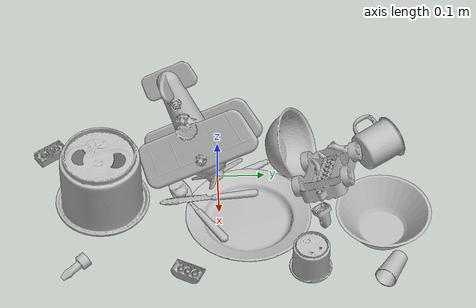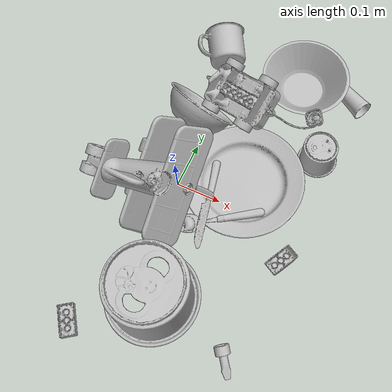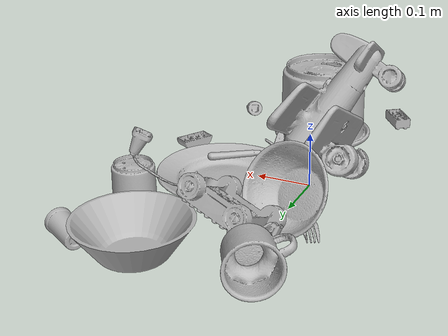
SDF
<sdf version="1.4">
  <world name="default">
    <light name="light1" type="point">
      <pose>0 0 1 0 0 0</pose>
      <diffuse>3 3 3 1</diffuse>
      <specular>3 3 3 1</specular>
    </light>
    <light name="light2" type="point">
      <pose>0 0.5 2 0 0 0</pose>
      <diffuse>1 1 1 1</diffuse>
      <specular>1 1 1 1</specular>
    </light>
    <light name="light3" type="point">
      <pose>0 0.5 2 0 0 0</pose>
      <diffuse>3 3 3 1</diffuse>
      <specular>3 3 3 1</specular>
    </light>
    <scene>
      <ambient>0.7 0.7 0.7</ambient>
    </scene>
    <model name="plate1">
      <link name="link_plate1">
        <collision name="default">
          <geometry>
            <mesh>
              <uri>model://plate/collision_meshes/collision.obj</uri>
              <scale>1.0 1.0 1.0</scale>
            </mesh>
          </geometry>
          <surface>
            <friction>
              <ode>
                <mu>0.5</mu>
                <mu2>0.5</mu2>
              </ode>
            </friction>
          <contact>
        <ode>
            <max_vel>0</max_vel>
            <min_depth>0.0001</min_depth>
            <kp>1e8</kp>
        </ode>
    </contact></surface>
        </collision>
        <visual name="default">
          <geometry>
            <mesh>
              <uri>model://plate/visual_meshes/visual.dae</uri>
              <scale>1.0 1.0 1.0</scale>
            </mesh>
          </geometry>
        </visual>
        <inertial>
          <mass>0.22833794355392456</mass>
          <pose>-0.000604461005423218 0.00027825840516015887 -0.0010561991948634386 0.0022188074693480237 -0.003225470002654536 0.4526028307495764</pose>
          <inertia>
            <ixx>0.0010681693</ixx>
            <iyy>0.0010579526</iyy>
            <izz>0.0020891798</izz>
            <ixy>0</ixy>
            <ixz>0</ixz>
            <iyz>0</iyz>
          </inertia>
        </inertial>
      </link>
      <pose>0.13071729242801666 0.05906184762716293 0.01650293543934822 0.030779093079011333 -0.01671567264154535 -0.6063190123311498</pose>
    </model>
    <model name="cup1">
      <link name="link_cup1">
        <collision name="default">
          <geometry>
            <mesh>
              <uri>model://i_cups/collision_meshes/collision.obj</uri>
              <scale>2.0 2.0 2.0</scale>
            </mesh>
          </geometry>
          <surface>
            <friction>
              <ode>
                <mu>0.5</mu>
                <mu2>0.5</mu2>
              </ode>
            </friction>
          <contact>
        <ode>
            <max_vel>0</max_vel>
            <min_depth>0.0001</min_depth>
            <kp>1e8</kp>
        </ode>
    </contact></surface>
        </collision>
        <visual name="default">
          <geometry>
            <mesh>
              <uri>model://i_cups/visual_meshes/visual.dae</uri>
              <scale>2.0 2.0 2.0</scale>
            </mesh>
          </geometry>
        </visual>
        <inertial>
          <mass>0.4681873917579651</mass>
          <pose>0.00022480281768366694 0.00033594679553061724 -0.001715805265121162 -0.028982833374769763 -0.039873302367341296 -0.3459182567321849</pose>
          <inertia>
            <ixx>0.0025928493</ixx>
            <iyy>0.0026156942</iyy>
            <izz>0.0028979292</izz>
            <ixy>0</ixy>
            <ixz>0</ixz>
            <iyz>0</iyz>
          </inertia>
        </inertial>
      </link>
      <pose>0.06248648837208748 -0.24328574538230896 0.07586605101823807 3.1415925678459105 -3.7283079988923565e-08 1.7273911360899834</pose>
    </model>
    <model name="silverware1">
      <link name="link_silverware1">
        <collision name="default">
          <geometry>
            <mesh>
              <uri>model://fork/collision_meshes/collision.obj</uri>
              <scale>1.0 1.0 1.0</scale>
            </mesh>
          </geometry>
          <surface>
            <friction>
              <ode>
                <mu>0.5</mu>
                <mu2>0.5</mu2>
              </ode>
            </friction>
          <contact>
        <ode>
            <max_vel>0</max_vel>
            <min_depth>0.0001</min_depth>
            <kp>1e8</kp>
        </ode>
    </contact></surface>
        </collision>
        <visual name="default">
          <geometry>
            <mesh>
              <uri>model://fork/visual_meshes/visual.dae</uri>
              <scale>1.0 1.0 1.0</scale>
            </mesh>
          </geometry>
        </visual>
        <inertial>
          <mass>0.027571624144911766</mass>
          <pose>-0.02957003377377987 0.00046588233090005815 0.00032188609475269914 -0.013550958023284024 -0.010977835737993834 0.014453901364285019</pose>
          <inertia>
            <ixx>9.665413e-07</ixx>
            <iyy>7.198156e-05</iyy>
            <izz>7.24139e-05</izz>
            <ixy>0</ixy>
            <ixz>0</ixz>
            <iyz>0</iyz>
          </inertia>
        </inertial>
      </link>
      <pose>-0.03158469498157501 0.10620997846126556 0.007446608506143093 -3.0634994968120606 0.0028358972557100495 2.080270332012593</pose>
    </model>
    <model name="silverware2">
      <link name="link_silverware2">
        <collision name="default">
          <geometry>
            <mesh>
              <uri>model://spoon/collision_meshes/collision.obj</uri>
              <scale>1.0 1.0 1.0</scale>
            </mesh>
          </geometry>
          <surface>
            <friction>
              <ode>
                <mu>0.5</mu>
                <mu2>0.5</mu2>
              </ode>
            </friction>
          <contact>
        <ode>
            <max_vel>0</max_vel>
            <min_depth>0.0001</min_depth>
            <kp>1e8</kp>
        </ode>
    </contact></surface>
        </collision>
        <visual name="default">
          <geometry>
            <mesh>
              <uri>model://spoon/visual_meshes/visual.dae</uri>
              <scale>1.0 1.0 1.0</scale>
            </mesh>
          </geometry>
        </visual>
        <inertial>
          <mass>0.026229728013277054</mass>
          <pose>-0.005526318680495024 -0.001603417913429439 -0.0007271656068041921 0.03521671072465583 -0.039065837568760656 0.006150610113583586</pose>
          <inertia>
            <ixx>1.4589405e-06</ixx>
            <iyy>9.980327e-05</iyy>
            <izz>0.00010052276</izz>
            <ixy>0</ixy>
            <ixz>0</ixz>
            <iyz>0</iyz>
          </inertia>
        </inertial>
      </link>
      <pose>0.11852532625198364 -0.045951664447784424 0.028849512338638306 -0.054797327219062456 -0.013358979901365222 -2.5531468447682775</pose>
    </model>
    <model name="silverware3">
      <link name="link_silverware3">
        <collision name="default">
          <geometry>
            <mesh>
              <uri>model://knife/collision_meshes/collision.obj</uri>
              <scale>1.0 1.0 1.0</scale>
            </mesh>
          </geometry>
          <surface>
            <friction>
              <ode>
                <mu>0.5</mu>
                <mu2>0.5</mu2>
              </ode>
            </friction>
          <contact>
        <ode>
            <max_vel>0</max_vel>
            <min_depth>0.0001</min_depth>
            <kp>1e8</kp>
        </ode>
    </contact></surface>
        </collision>
        <visual name="default">
          <geometry>
            <mesh>
              <uri>model://knife/visual_meshes/visual.dae</uri>
              <scale>1.0 1.0 1.0</scale>
            </mesh>
          </geometry>
        </visual>
        <inertial>
          <mass>0.02346421591937542</mass>
          <pose>-0.02378525584936142 0.0015275125624611974 5.062017953605391e-05 0.07305400797241687 0.017248417900584085 -0.007409820985288758</pose>
          <inertia>
            <ixx>6.6600956e-07</ixx>
            <iyy>9.0145724e-05</iyy>
            <izz>9.036023e-05</izz>
            <ixy>0</ixy>
            <ixz>0</ixz>
            <iyz>0</iyz>
          </inertia>
        </inertial>
      </link>
      <pose>0.07976722717285156 -0.02078089490532875 0.025100920349359512 0.14191877843541556 -0.15175019031441211 -1.34360248012184</pose>
    </model>
    <model name="cup3">
      <link name="link_cup3">
        <collision name="default">
          <geometry>
            <mesh>
              <uri>model://g_cups/collision_meshes/collision.obj</uri>
              <scale>1.0 1.0 1.0</scale>
            </mesh>
          </geometry>
          <surface>
            <friction>
              <ode>
                <mu>0.5</mu>
                <mu2>0.5</mu2>
              </ode>
            </friction>
          <contact>
        <ode>
            <max_vel>0</max_vel>
            <min_depth>0.0001</min_depth>
            <kp>1e8</kp>
        </ode>
    </contact></surface>
        </collision>
        <visual name="default">
          <geometry>
            <mesh>
              <uri>model://g_cups/visual_meshes/visual.dae</uri>
              <scale>1.0 1.0 1.0</scale>
            </mesh>
          </geometry>
        </visual>
        <inertial>
          <mass>0.061065707355737686</mass>
          <pose>-0.0007946277037262917 -4.2064726585522294e-05 -0.002132938476279378 -0.21381528234109023 -0.31410608856426947 0.31118675593786127</pose>
          <inertia>
            <ixx>7.1277376e-05</ixx>
            <iyy>7.10349e-05</iyy>
            <izz>7.383109e-05</izz>
            <ixy>0</ixy>
            <ixz>0</ixz>
            <iyz>0</iyz>
          </inertia>
        </inertial>
      </link>
      <pose>0.25506800413131714 0.1797756850719452 0.03711599484086037 -3.1415926403646357 -1.0131676895645747e-08 -0.9068571551197652</pose>
    </model>
    <model name="cup4">
      <link name="link_cup4">
        <collision name="default">
          <geometry>
            <mesh>
              <uri>model://mug/collision_meshes/collision.obj</uri>
              <scale>1.0 1.0 1.0</scale>
            </mesh>
          </geometry>
          <surface>
            <friction>
              <ode>
                <mu>0.5</mu>
                <mu2>0.5</mu2>
              </ode>
            </friction>
          <contact>
        <ode>
            <max_vel>0</max_vel>
            <min_depth>0.0001</min_depth>
            <kp>1e8</kp>
        </ode>
    </contact></surface>
        </collision>
        <visual name="default">
          <geometry>
            <mesh>
              <uri>model://mug/visual_meshes/visual.dae</uri>
              <scale>1.0 1.0 1.0</scale>
            </mesh>
          </geometry>
        </visual>
        <inertial>
          <mass>0.23807048797607422</mass>
          <pose>0.009571674279868603 0.0008143257582560182 -0.010947330854833126 -0.1298314387661624 0.08737745525079747 0.05507303490292968</pose>
          <inertia>
            <ixx>0.00023648023</ixx>
            <iyy>0.0002641344</iyy>
            <izz>0.00030547503</izz>
            <ixy>0</ixy>
            <ixz>0</ixz>
            <iyz>0</iyz>
          </inertia>
        </inertial>
      </link>
      <pose>-0.04698919132351875 0.3353821635246277 0.04841425642371178 -1.4804553485164413 0.37885831675838566 0.5742030504296439</pose>
    </model>
    <model name="cup5">
      <link name="link_cup5">
        <collision name="default">
          <geometry>
            <mesh>
              <uri>model://cup_small/collision_meshes/collision.obj</uri>
              <scale>1.0 1.0 1.0</scale>
            </mesh>
          </geometry>
          <surface>
            <friction>
              <ode>
                <mu>0.5</mu>
                <mu2>0.5</mu2>
              </ode>
            </friction>
          <contact>
        <ode>
            <max_vel>0</max_vel>
            <min_depth>0.0001</min_depth>
            <kp>1e8</kp>
        </ode>
    </contact></surface>
        </collision>
        <visual name="default">
          <geometry>
            <mesh>
              <uri>model://cup_small/visual_meshes/visual.dae</uri>
              <scale>1.0 1.0 1.0</scale>
            </mesh>
          </geometry>
        </visual>
        <inertial>
          <mass>0.034257128834724426</mass>
          <pose>0.00010482469951966777 -0.00033778377110138535 -0.01074282731860876 -0.011493012610900502 -0.015280351102743797 -0.5058271067899499</pose>
          <inertia>
            <ixx>2.0170073e-05</ixx>
            <iyy>2.0274121e-05</iyy>
            <izz>9.106847e-06</izz>
            <ixy>0</ixy>
            <ixz>0</ixz>
            <iyz>0</iyz>
          </inertia>
        </inertial>
      </link>
      <pose>0.2783665060997009 0.34365519881248474 0.02021709270775318 1.4776911497370122 0.4647754022803204 0.9768862966320542</pose>
    </model>
    <model name="bowl1">
      <link name="link_bowl1">
        <collision name="default">
          <geometry>
            <mesh>
              <uri>model://bowl/collision_meshes/collision.obj</uri>
              <scale>1.0 1.0 1.0</scale>
            </mesh>
          </geometry>
          <surface>
            <friction>
              <ode>
                <mu>0.5</mu>
                <mu2>0.5</mu2>
              </ode>
            </friction>
          <contact>
        <ode>
            <max_vel>0</max_vel>
            <min_depth>0.0001</min_depth>
            <kp>1e8</kp>
        </ode>
    </contact></surface>
        </collision>
        <visual name="default">
          <geometry>
            <mesh>
              <uri>model://bowl/visual_meshes/visual.dae</uri>
              <scale>1.0 1.0 1.0</scale>
            </mesh>
          </geometry>
        </visual>
        <inertial>
          <mass>0.06465846300125122</mass>
          <pose>0.0002044529392151162 -0.0010302059818059206 -0.0008042643894441426 -0.015764115524798613 0.014546769889283702 0.7140385686011532</pose>
          <inertia>
            <ixx>0.00014852564</ixx>
            <iyy>0.000145207</iyy>
            <izz>0.00024987117</izz>
            <ixy>0</ixy>
            <ixz>0</ixz>
            <iyz>0</iyz>
          </inertia>
        </inertial>
      </link>
      <pose>-0.023966999724507332 0.14829641580581665 0.05875605344772339 -1.0360385625500714 0.20200182511468734 -0.16381157353118445</pose>
    </model>
    <model name="bowl2">
      <link name="link_bowl2">
        <collision name="default">
          <geometry>
            <mesh>
              <uri>model://bowl_a/collision_meshes/collision.obj</uri>
              <scale>1.0 1.0 1.0</scale>
            </mesh>
          </geometry>
          <surface>
            <friction>
              <ode>
                <mu>0.5</mu>
                <mu2>0.5</mu2>
              </ode>
            </friction>
          <contact>
        <ode>
            <max_vel>0</max_vel>
            <min_depth>0.0001</min_depth>
            <kp>1e8</kp>
        </ode>
    </contact></surface>
        </collision>
        <visual name="default">
          <geometry>
            <mesh>
              <uri>model://bowl_a/visual_meshes/visual.dae</uri>
              <scale>1.0 1.0 1.0</scale>
            </mesh>
          </geometry>
        </visual>
        <inertial>
          <mass>0.4949932396411896</mass>
          <pose>0.00027867621975019574 4.730939326691441e-05 -0.0013765293406322598 -0.0009805412802391578 -0.001093824733375575 -0.19123603072484788</pose>
          <inertia>
            <ixx>0.0014092687</ixx>
            <iyy>0.0014179207</iyy>
            <izz>0.0025064375</izz>
            <ixy>0</ixy>
            <ixz>0</ixz>
            <iyz>0</iyz>
          </inertia>
        </inertial>
      </link>
      <pose>0.16159144043922424 0.3341344892978668 0.0303830336779356 5.060936381811154e-07 5.702458666587589e-07 2.0903857617433</pose>
    </model>
    <model name="toy1">
      <link name="link_toy1">
        <collision name="default">
          <geometry>
            <mesh>
              <uri>model://a_toy_airplane/collision_meshes/collision.obj</uri>
              <scale>1.0 1.0 1.0</scale>
            </mesh>
          </geometry>
          <surface>
            <friction>
              <ode>
                <mu>0.5</mu>
                <mu2>0.5</mu2>
              </ode>
            </friction>
          <contact>
        <ode>
            <max_vel>0</max_vel>
            <min_depth>0.0001</min_depth>
            <kp>1e8</kp>
        </ode>
    </contact></surface>
        </collision>
        <visual name="default">
          <geometry>
            <mesh>
              <uri>model://a_toy_airplane/visual_meshes/visual.dae</uri>
              <scale>1.0 1.0 1.0</scale>
            </mesh>
          </geometry>
        </visual>
        <inertial>
          <mass>1.5726872682571411</mass>
          <pose>0.025165090337395668 -0.003707318101078272 -0.0011962441494688392 -0.012016975653996446 -0.14663502644886817 0.00414906395026872</pose>
          <inertia>
            <ixx>0.0057111816</ixx>
            <iyy>0.008322349</iyy>
            <izz>0.009744448</izz>
            <ixy>0</ixy>
            <ixz>0</ixz>
            <iyz>0</iyz>
          </inertia>
        </inertial>
      </link>
      <pose>-0.02481047622859478 -0.05139099434018135 0.13880567252635956 1.0231622732547396 1.0326140115629647 0.997035227707268</pose>
    </model>
    <model name="toy2">
      <link name="link_toy2">
        <collision name="default">
          <geometry>
            <mesh>
              <uri>model://g_lego_duplo/collision_meshes/collision.obj</uri>
              <scale>1.0 1.0 1.0</scale>
            </mesh>
          </geometry>
          <surface>
            <friction>
              <ode>
                <mu>0.5</mu>
                <mu2>0.5</mu2>
              </ode>
            </friction>
          <contact>
        <ode>
            <max_vel>0</max_vel>
            <min_depth>0.0001</min_depth>
            <kp>1e8</kp>
        </ode>
    </contact></surface>
        </collision>
        <visual name="default">
          <geometry>
            <mesh>
              <uri>model://g_lego_duplo/visual_meshes/visual.dae</uri>
              <scale>1.0 1.0 1.0</scale>
            </mesh>
          </geometry>
        </visual>
        <inertial>
          <mass>0.27239978313446045</mass>
          <pose>-0.05004768446087837 0.0017554647056385875 0.003880675882101059 0.010962999716487856 0.03810827607734427 -0.09653019061870628</pose>
          <inertia>
            <ixx>0.00039471043</ixx>
            <iyy>0.0011933373</iyy>
            <izz>0.0014929089</izz>
            <ixy>0</ixy>
            <ixz>0</ixz>
            <iyz>0</iyz>
          </inertia>
        </inertial>
      </link>
      <pose>0.10289984941482544 0.21793507039546967 0.07242350280284882 -2.704676834655168 -0.251327085161822 -0.2739842885763722</pose>
    </model>
    <model name="toy3">
      <link name="link_toy3">
        <collision name="default">
          <geometry>
            <mesh>
              <uri>model://e_toy_airplane/collision_meshes/collision.obj</uri>
              <scale>1.0 1.0 1.0</scale>
            </mesh>
          </geometry>
          <surface>
            <friction>
              <ode>
                <mu>0.5</mu>
                <mu2>0.5</mu2>
              </ode>
            </friction>
          <contact>
        <ode>
            <max_vel>0</max_vel>
            <min_depth>0.0001</min_depth>
            <kp>1e8</kp>
        </ode>
    </contact></surface>
        </collision>
        <visual name="default">
          <geometry>
            <mesh>
              <uri>model://e_toy_airplane/visual_meshes/visual.dae</uri>
              <scale>1.0 1.0 1.0</scale>
            </mesh>
          </geometry>
        </visual>
        <inertial>
          <mass>0.02767481654882431</mass>
          <pose>0.00011740472837118432 -2.2482989152194932e-05 -0.011187202297151089 0.005518508312800945 0.009228282632666047 0.1504154330375105</pose>
          <inertia>
            <ixx>8.446671e-06</ixx>
            <iyy>8.360266e-06</iyy>
            <izz>2.5385568e-06</izz>
            <ixy>0</ixy>
            <ixz>0</ixz>
            <iyz>0</iyz>
          </inertia>
        </inertial>
      </link>
      <pose>0.24674488604068756 -0.298633337020874 0.01033255085349083 2.425737814278139 -1.197818650040979 -0.1902402350354145</pose>
    </model>
    <model name="toy4">
      <link name="link_toy4">
        <collision name="default">
          <geometry>
            <mesh>
              <uri>model://c_lego_duplo/collision_meshes/collision.obj</uri>
              <scale>1.0 1.0 1.0</scale>
            </mesh>
          </geometry>
          <surface>
            <friction>
              <ode>
                <mu>0.5</mu>
                <mu2>0.5</mu2>
              </ode>
            </friction>
          <contact>
        <ode>
            <max_vel>0</max_vel>
            <min_depth>0.0001</min_depth>
            <kp>1e8</kp>
        </ode>
    </contact></surface>
        </collision>
        <visual name="default">
          <geometry>
            <mesh>
              <uri>model://c_lego_duplo/visual_meshes/visual.dae</uri>
              <scale>1.0 1.0 1.0</scale>
            </mesh>
          </geometry>
        </visual>
        <inertial>
          <mass>0.027596205472946167</mass>
          <pose>0.0003164597146678716 0.00019464619981590658 0.0010453155264258385 -0.011520800817134696 0.005900104067849837 0.03110033537421094</pose>
          <inertia>
            <ixx>1.0619538e-05</ixx>
            <iyy>3.3922634e-06</iyy>
            <izz>1.2410018e-05</izz>
            <ixy>0</ixy>
            <ixz>0</ixz>
            <iyz>0</iyz>
          </inertia>
        </inertial>
      </link>
      <pose>-0.06822437047958374 -0.35495132207870483 0.011915476992726326 -3.135448942187748 -0.001396323351097642 0.6363747786774953</pose>
    </model>
    <model name="toy5">
      <link name="link_toy5">
        <collision name="default">
          <geometry>
            <mesh>
              <uri>model://a_lego_duplo/collision_meshes/collision.obj</uri>
              <scale>1.0 1.0 1.0</scale>
            </mesh>
          </geometry>
          <surface>
            <friction>
              <ode>
                <mu>0.5</mu>
                <mu2>0.5</mu2>
              </ode>
            </friction>
          <contact>
        <ode>
            <max_vel>0</max_vel>
            <min_depth>0.0001</min_depth>
            <kp>1e8</kp>
        </ode>
    </contact></surface>
        </collision>
        <visual name="default">
          <geometry>
            <mesh>
              <uri>model://a_lego_duplo/visual_meshes/visual.dae</uri>
              <scale>1.0 1.0 1.0</scale>
            </mesh>
          </geometry>
        </visual>
        <inertial>
          <mass>0.011767913587391376</mass>
          <pose>-0.00011337622709106654 0.00018517576972953975 0.0003692608152050525 -0.0141170192796563 -0.00012565406274383194 6.140908251533293e-05</pose>
          <inertia>
            <ixx>1.5087408e-06</ixx>
            <iyy>3.3799095e-06</iyy>
            <izz>4.186769e-06</izz>
            <ixy>0</ixy>
            <ixz>0</ixz>
            <iyz>0</iyz>
          </inertia>
        </inertial>
      </link>
      <pose>0.26990121603012085 -0.0693182647228241 0.01212473213672638 -3.141287610891771 -0.01558057581825033 1.0766663927571956</pose>
    </model>
  <physics type="ode">
      <max_contacts>50</max_contacts>
      <ode>
        <solver>
          <type>quick</type>
          <iters>75</iters>
        </solver>
        <constraints>
          <contact_max_correcting_vel>0</contact_max_correcting_vel>
          <contact_surface_layer>0</contact_surface_layer>
        </constraints>
      </ode>
    </physics></world>
</sdf>
